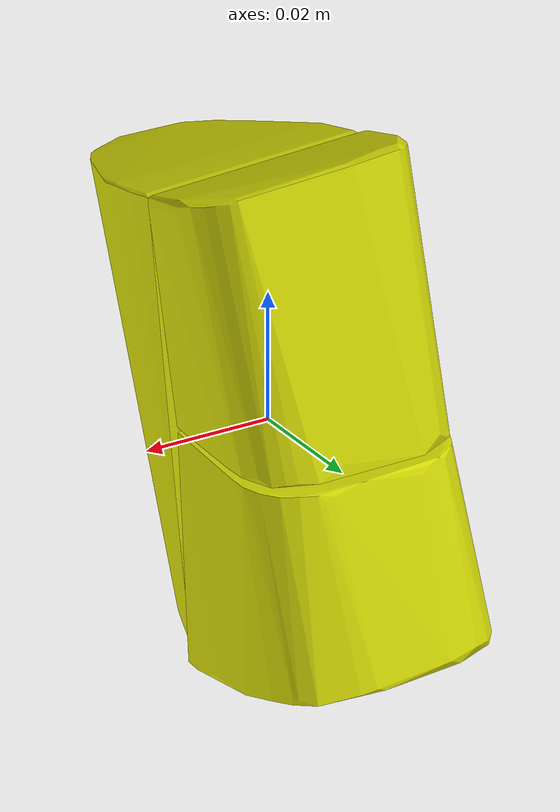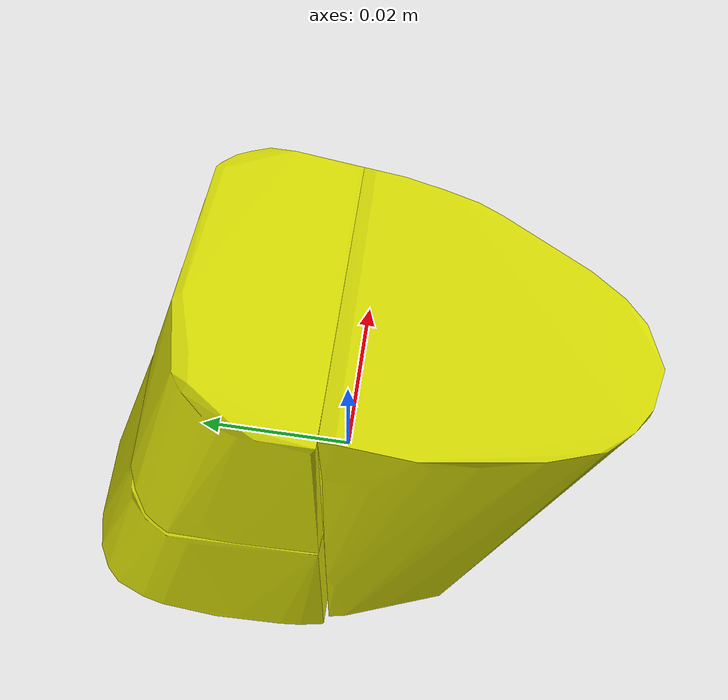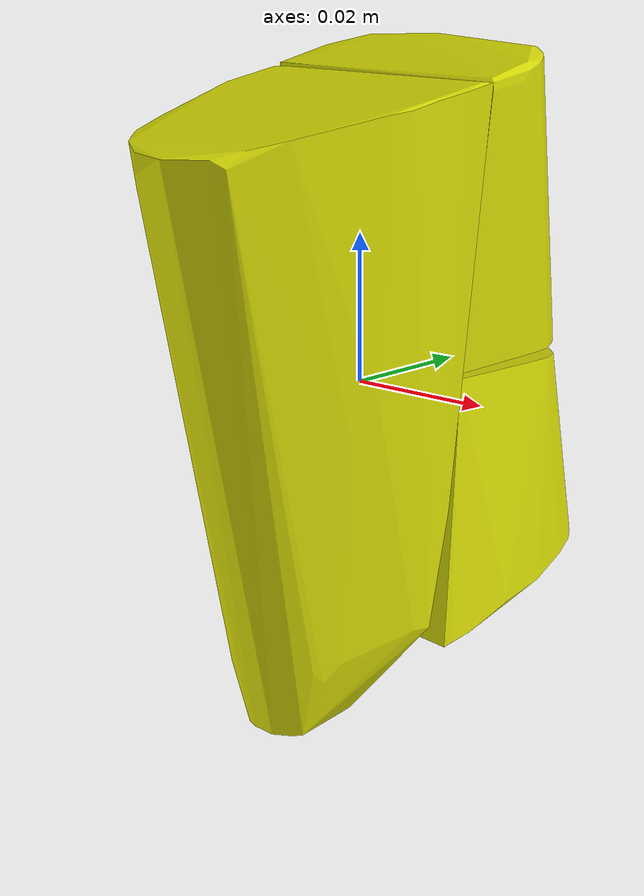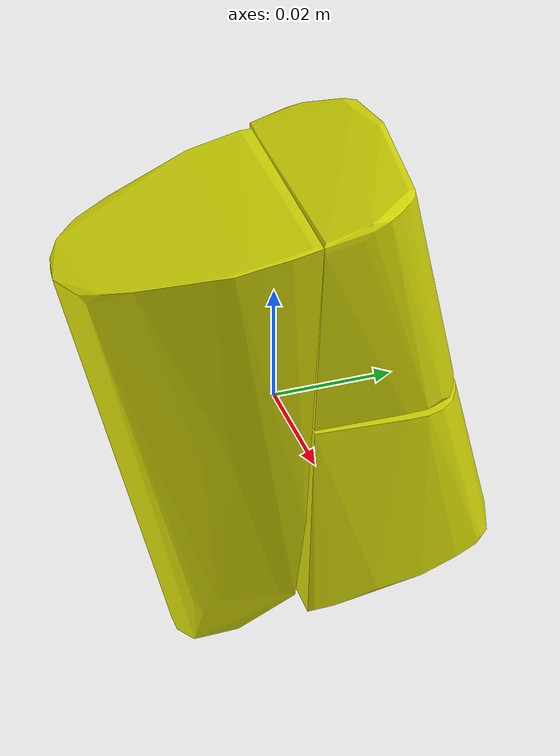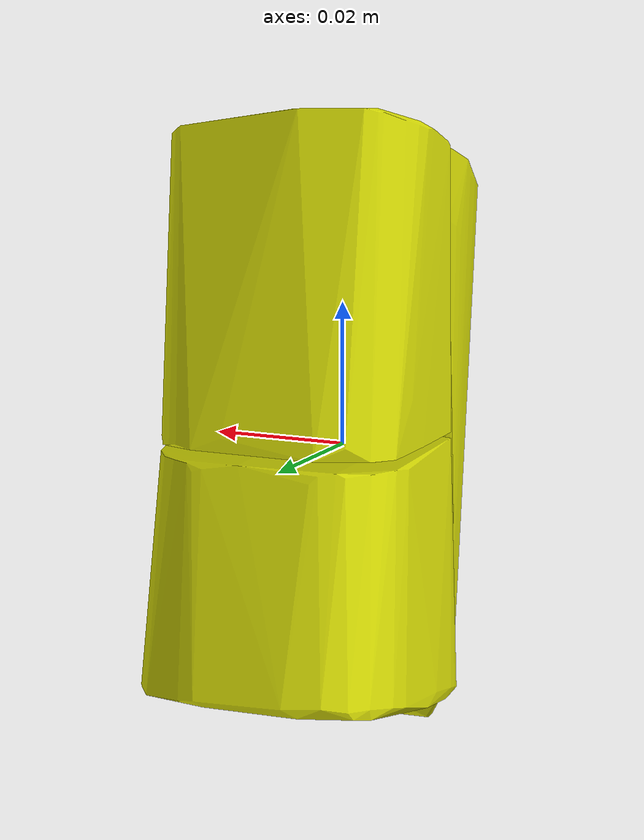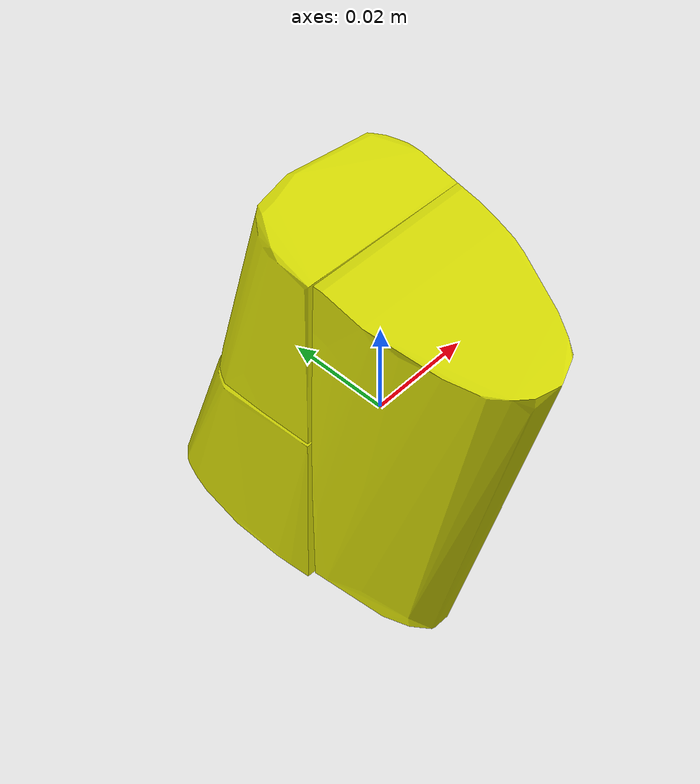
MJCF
<mujoco model="LivioClassicOil">
  <asset>
    <mesh file="meshes/LivioClassicOil/LivioClassicOil_0.stl" name="LivioClassicOil_0" scale="1.6 1.6 1.6"/>
    <mesh file="meshes/LivioClassicOil/LivioClassicOil_1.stl" name="LivioClassicOil_1" scale="1.6 1.6 1.6"/>
    <mesh file="meshes/LivioClassicOil/LivioClassicOil_2.stl" name="LivioClassicOil_2" scale="1.6 1.6 1.6"/>
    <texture file="../textures/liviooil_1.png" name="tex-liviooil" />
    <material name="liviooil_mat" reflectance="0.7" texture="tex-liviooil" texuniform="true"/>
  </asset>
  <worldbody>
    <body>
      <body name="collision">
        <geom condim="4" density="100" friction="1.5 0.3 0.1" group="1" mesh="LivioClassicOil_0" pos="0 0 0" rgba="0.835 0.855 0.016 1" solimp="0.998 0.998 0.001" solref="0.002 1" type="mesh"/>
        <geom condim="4" density="100" friction="1.5 0.3 0.1" group="1" mesh="LivioClassicOil_1" pos="0 0 0" rgba="0.835 0.855 0.016 1" solimp="0.998 0.998 0.001" solref="0.002 1" type="mesh"/>
        <geom condim="4" density="100" friction="1.5 0.3 0.1" group="1" mesh="LivioClassicOil_2" pos="0 0 0" rgba="0.835 0.855 0.016 1" solimp="0.998 0.998 0.001" solref="0.002 1" type="mesh"/>
      </body>
      <body name="visual">
        <geom conaffinity="0" contype="0" group="0" mass="0.0001" mesh="LivioClassicOil_0" pos="0 0 0" rgba="0 1 0 1" type="mesh"/>
        <geom conaffinity="0" contype="0" group="0" mass="0.0001" mesh="LivioClassicOil_1" pos="0 0 0" rgba="0 1 0 1" type="mesh"/>
        <geom conaffinity="0" contype="0" group="0" mass="0.0001" mesh="LivioClassicOil_2" pos="0 0 0" rgba="0 1 0 1" type="mesh"/>
      </body>
      <site name="bottom_site" pos="0 0 -0.06" rgba="0 0 0 0" size="0.005"/>
      <site name="top_site" pos="0 0 0.04" rgba="0 0 0 0" size="0.005"/>
      <site name="horizontal_radius_site" pos="0.025 0.025 0" rgba="0 0 0 0" size="0.005"/>
    </body>
  </worldbody>
</mujoco>
